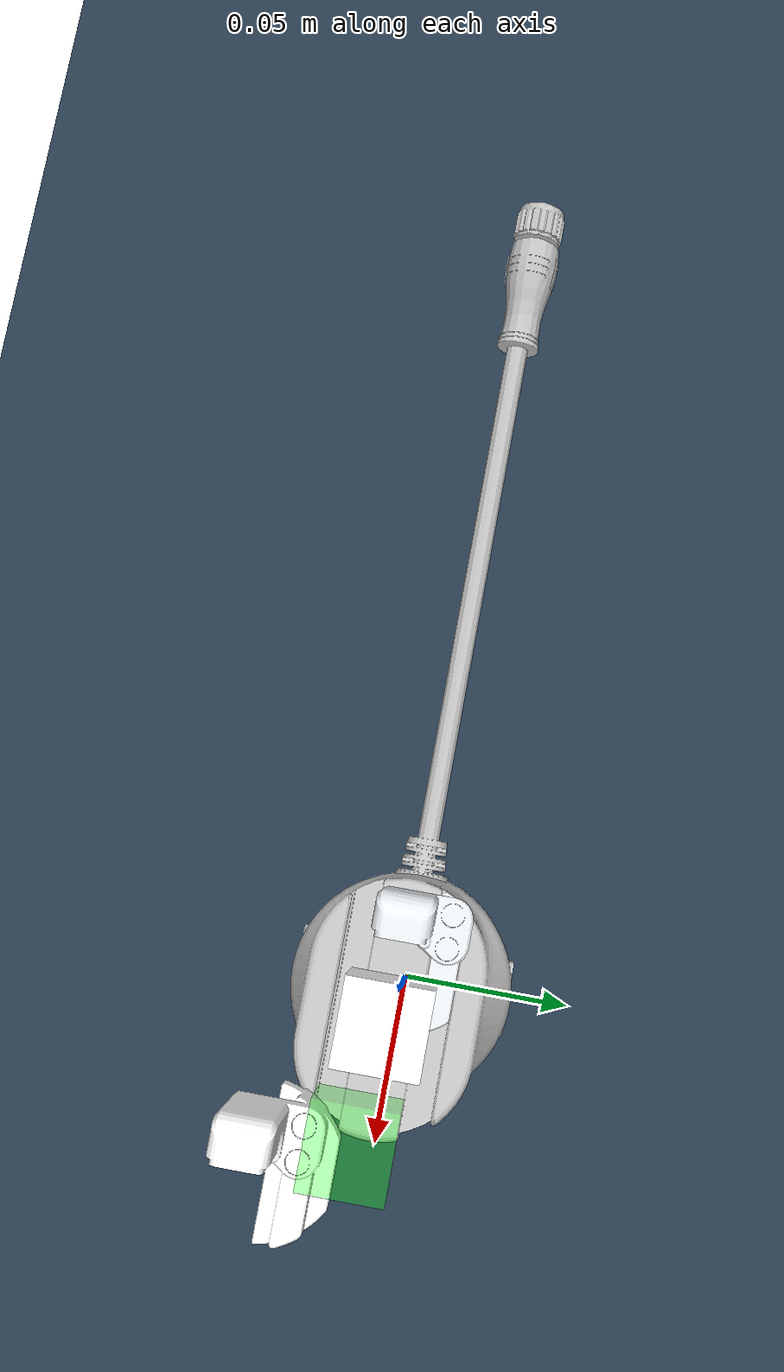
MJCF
<mujoco model="PGC-50-35 scene">
  <include file="PGC-50-35.xml"/>

  <statistic center="0.2 0 0.4" extent=".65" meansize="0.08"/>

  <visual>
    <headlight diffuse="0.3 0.3 0.3" ambient="0.3 0.3 0.3"/>
    <rgba haze="0.15 0.25 0.35 1"/>
    <global azimuth="150" elevation="-20"/>
  </visual>

  <asset>
    <texture name="grid" type="2d" builtin="checker" rgb1=".2 .3 .4" rgb2=".1 0.15 0.2" width="512" height="512"
      mark="cross" markrgb=".8 .8 .8"/>
    <material name="grid" texture="grid" texrepeat="1 1" texuniform="true"/>
  </asset>

  <worldbody>
    <light pos="0 0 5"/>
    <geom name="floor" size="1 1 0.01" type="plane" material="grid"/>
    <body name="target" pos="0 0 .12" quat="0 1 0 0">
      <geom type="box" size="0.01 0.01 .01" contype="1" conaffinity="1" rgba="1 1 1 1"/>
    </body>
  </worldbody>
</mujoco>

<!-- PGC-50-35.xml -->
<mujoco model="pgc50new">
  <compiler angle="radian"/>

  <option integrator="implicitfast"/>

  <asset>

    <material name="white" rgba="1 1 1 1"/>
    <material name="gray" rgba="0.753 0.753 0.753 1"/>
    <material name="black" rgba="0.149 0.149 0.149 1"/>

    <mesh name="base_link" content_type="model/stl" file="base_link.STL"/>
    <mesh name="finger1_link" content_type="model/stl" file="finger1_link.STL"/>
    <mesh name="finger2_link" content_type="model/stl" file="finger2_link.STL"/>

  </asset>

  <worldbody>
    <geom type="mesh" material="gray" mesh="base_link"/>
    <body name="finger1_link" pos="0.025043 -0.01085 0.099">
      <inertial pos="0.0030491 -0.0066024 0.0064209" quat="0.675095 0.0437776 -0.107674 0.728516" mass="0.014278" diaginertia="2.35597e-06 1.75554e-06 1.28399e-06"/>
      <joint name="finger1_joint" pos="0 0 0" axis="-1 0 0" type="slide" range="0 0.0185"/>
      <geom type="mesh" rgba="1 1 1 1" mesh="finger1_link"/>
      <geom type="box" size="0.01 0.01 0.01" pos="0.003 0.008 0.014" rgba="0 1 0 0.3" contype="1" conaffinity="1"/>
    </body>
    <body name="finger2_link" pos="-0.025043 0.01085 0.099">
      <inertial pos="0.0030491 -0.0066024 0.0064209" quat="0.675095 0.0437776 -0.107674 0.728516" mass="0.014278" diaginertia="2.35597e-06 1.75554e-06 1.28399e-06"/>
      <joint name="finger2_joint" pos="0 0 0" axis="1 0 0" type="slide"  range="0 0.0185"/>
      <geom type="mesh" rgba="0.898039 0.917647 0.929412 1" mesh="finger2_link"/>
    </body>
  </worldbody>

   <actuator>
        <!-- 新增夹爪执行器（MuJoCo使用equality实现联动） -->
        <position name="r_gripper" joint="finger1_joint" ctrllimited="true" ctrlrange="0 0.01875" kp="10000" kv="100"/>
    </actuator>

  <equality>
        <!-- 右爪联动约束 -->
        <joint name="r_gripper_sync" joint1="finger1_joint" joint2="finger2_joint" polycoef="0 1 0" solimp="0.95 0.99 0.001" solref="0.005 1"/>

  </equality>

  <contact>
    <exclude body1="world" body2="finger2_link"/>
    <exclude body1="world" body2="finger1_link"/>
  </contact>

</mujoco>
